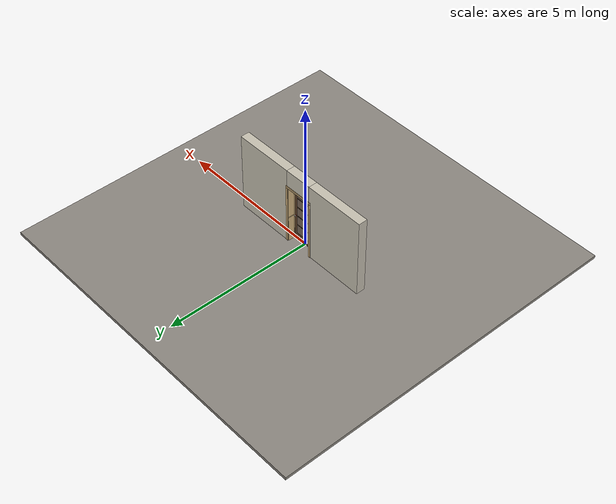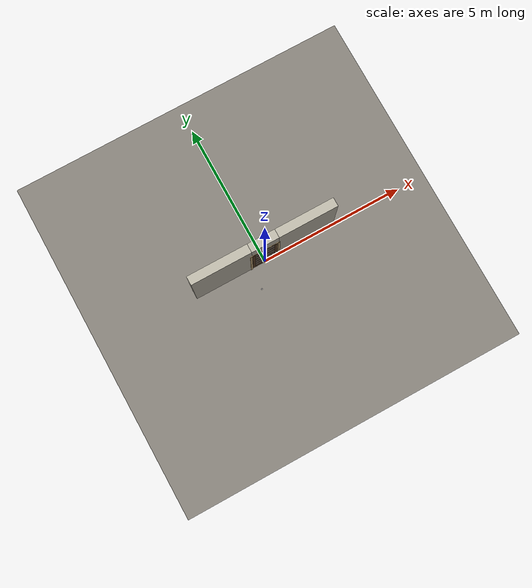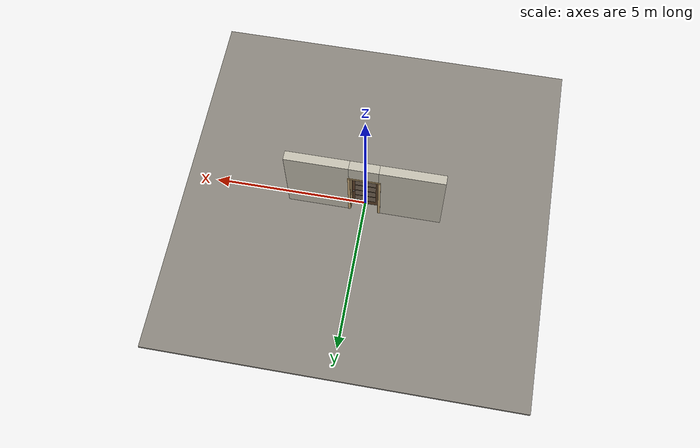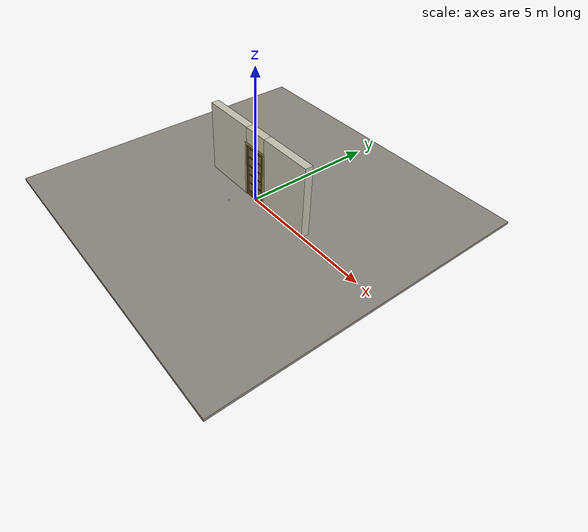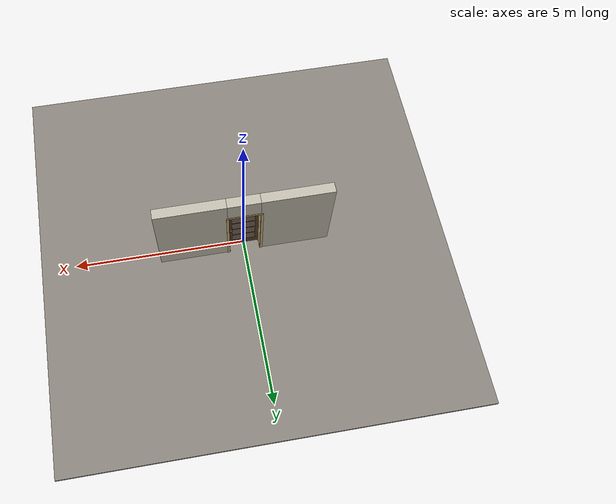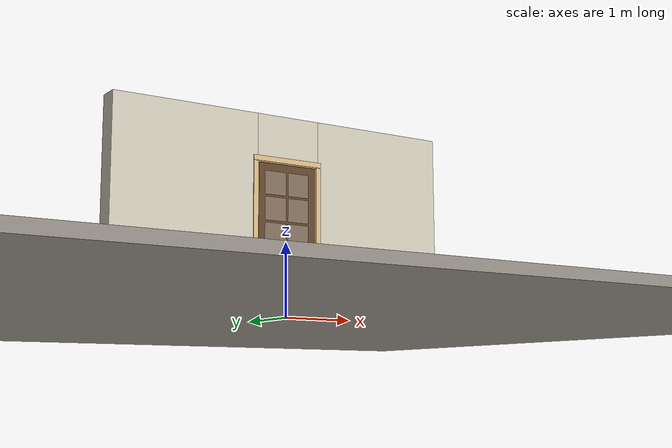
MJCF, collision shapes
<?xml version="1.0" ?>
<mujoco model="db0692_swing_single_full">
  <compiler angle="radian" meshdir="../../hardware" texturedir="../../textures" autolimits="true" inertiafromgeom="false"/>
  <option timestep="0.002" integrator="implicitfast" cone="elliptic" impratio="10" noslip_iterations="3">
    <flag multiccd="enable"/>
  </option>
  <size memory="16M"/>
  <default>
    <geom condim="4" solref="0.005 1" solimp="0.95 0.99 0.001"/>
    <joint solreflimit="0.005 1" solimplimit="0.95 0.99 0.001"/>
    <tendon solreflimit="0.005 1"/>
    <equality solref="0.002 1"/>
  </default>
  <visual>
    <headlight ambient="0.4 0.4 0.4" diffuse="0.7 0.7 0.7" specular="0.2 0.2 0.2"/>
    <quality shadowsize="4096"/>
    <map znear="0.01" zfar="60"/>
  </visual>
  <asset>
    <mesh name="hinge_e53abd72ad" file="hinge_e53abd72ad.obj"/>
    <mesh name="hinge_jamb_c17a76d68c" file="hinge_jamb_c17a76d68c.obj"/>
    <mesh name="knob_248d825e64" file="knob_248d825e64.obj"/>
    <mesh name="knob_d1888f6f03" file="knob_d1888f6f03.obj"/>
    <material name="mat_floor" rgba="0.55 0.53 0.5 1" specular="0.2" shininess="0.15" reflectance="0"/>
    <material name="mat_wall" rgba="0.78 0.76 0.7 1" specular="0.2" shininess="0.1" reflectance="0"/>
    <material name="mat_leaf" rgba="0.366 0.252 0.159 1" specular="0.2" shininess="0.5" reflectance="0"/>
    <material name="mat_glass" rgba="0.85 0.92 0.95 0.25" specular="0.2" shininess="0.95" reflectance="0.1"/>
    <material name="mat_hinge" rgba="0.65 0.66 0.68 1" specular="0.74" shininess="0.5" reflectance="0.36"/>
    <material name="mat_op_nickel_satin" rgba="0.72 0.7 0.66 1" specular="0.8" shininess="0.65" reflectance="0.4"/>
    <material name="mat_trim" rgba="0.85 0.66 0.3 1" specular="0.8" shininess="0.75" reflectance="0.4"/>
    <material name="mat_bolt" rgba="0.85 0.66 0.3 1" specular="0.8" shininess="0.75" reflectance="0.4"/>
    <material name="mat_frame" rgba="0.82 0.7 0.5 1" specular="0.2" shininess="0.45" reflectance="0"/>
    <material name="mat_stop" rgba="0.9 0.9 0.92 1" specular="0.8" shininess="0.9" reflectance="0.4"/>
    <texture name="skybox" type="skybox" builtin="gradient" rgb1="0.6 0.7 0.85" rgb2="0.9 0.92 0.95" width="256" height="256"/>
  </asset>
  <worldbody>
    <light name="sun" pos="1.5 -2.5 4" dir="-0.3 0.5 -0.8" directional="true" diffuse="0.8 0.8 0.8" specular="0.3 0.3 0.3" castshadow="true"/>
    <light name="fill" pos="-1.5 2.5 3" dir="0.3 -0.5 -0.7" directional="true" diffuse="0.35 0.35 0.4" castshadow="false"/>
    <camera name="robot_view" pos="0 -2.419187 1.734312" xyaxes="1 0 0 0 0.26963 0.962964" fovy="52"/>
    <camera name="far_view" pos="0 2.665188 1.734312" xyaxes="-1 0 0 0 -0.26963 0.962964" fovy="52"/>
    <camera name="iso" pos="1.932062 -2.012437 2.141063" xyaxes="0.741536 0.670913 0 -0.242917 0.268487 0.932151" fovy="46"/>
    <camera name="detail_handle" pos="0.5515 -0.8665 1.194" xyaxes="0.97561 0.219512 0 -0.070934 0.315262 0.94635" fovy="38"/>
    <geom name="floor" type="box" size="6 6 0.05" pos="0 0 -0.05" material="mat_floor" group="0" contype="1" conaffinity="1" friction="0.8 0.005 0.0001" density="2400"/>
    <geom name="wall_left" type="box" size="1.02275 0.15 1.35" pos="-1.47725 0.123 1.35" material="mat_wall" group="0" contype="1" conaffinity="1" friction="0.6 0.005 0.0001" density="800"/>
    <geom name="wall_right" type="box" size="1.00775 0.15 1.35" pos="1.49225 0.123 1.35" material="mat_wall" group="0" contype="1" conaffinity="1" friction="0.6 0.005 0.0001" density="800"/>
    <geom name="wall_header" type="box" size="0.4695 0.15 0.303" pos="0.015 0.123 2.397" material="mat_wall" group="0" contype="1" conaffinity="1" friction="0.6 0.005 0.0001" density="800"/>
    <geom name="hinge_0_jamb" type="mesh" mesh="hinge_jamb_c17a76d68c" pos="-0.4325 -0.027 0.259" material="mat_hinge" group="1" contype="0" conaffinity="0" density="7850"/>
    <geom name="hinge_1_jamb" type="mesh" mesh="hinge_jamb_c17a76d68c" pos="-0.4325 -0.027 1.025" material="mat_hinge" group="1" contype="0" conaffinity="0" density="7850"/>
    <geom name="hinge_2_jamb" type="mesh" mesh="hinge_jamb_c17a76d68c" pos="-0.4325 -0.027 1.861" material="mat_hinge" group="1" contype="0" conaffinity="0" density="7850"/>
    <geom name="jamb_hinge" type="box" size="0.0095 0.15 1.0225" pos="-0.445 0.123 1.0225" material="mat_frame" group="0" contype="1" conaffinity="1" friction="0.6 0.005 0.0001" density="400"/>
    <geom name="strike_914_wall_n" type="box" size="0.0245 0.132575 0.0167" pos="0.46 0.140425 0.914" material="mat_frame" group="0" contype="1" conaffinity="1" friction="0.6 0.005 0.0001" density="400"/>
    <geom name="strike_914_wall_p" type="box" size="0.0245 0.008 0.0167" pos="0.46 -0.01585 0.914" material="mat_frame" group="0" contype="1" conaffinity="1" friction="0.6 0.005 0.0001" density="400"/>
    <geom name="strike_914_ramp" type="box" size="0.0245 0.01649 0.0167" pos="0.464636 -0.028673 0.914" quat="0.977148 0 0 0.212558" material="mat_frame" group="0" contype="1" conaffinity="1" friction="0.12 0.005 0.0001" density="400"/>
    <geom name="strike_914_back" type="box" size="0.01615 0.00785 0.0167" pos="0.46835 0 0.914" material="mat_frame" group="0" contype="1" conaffinity="1" friction="0.6 0.005 0.0001" density="400"/>
    <geom name="jamb_strike_0" type="box" size="0.0245 0.15 0.44865" pos="0.46 0.123 0.44865" material="mat_frame" group="0" contype="1" conaffinity="1" friction="0.6 0.005 0.0001" density="400"/>
    <geom name="jamb_strike_1" type="box" size="0.0245 0.15 0.55715" pos="0.46 0.123 1.48785" material="mat_frame" group="0" contype="1" conaffinity="1" friction="0.6 0.005 0.0001" density="400"/>
    <geom name="jamb_head" type="box" size="0.4695 0.15 0.0095" pos="0.015 0.123 2.0545" material="mat_frame" group="0" contype="1" conaffinity="1" friction="0.6 0.005 0.0001" density="400"/>
    <geom name="head_stud" type="box" size="0.4695 0.15 0.015" pos="0.015 0.123 2.079" material="mat_wall" group="0" contype="1" conaffinity="1" friction="0.6 0.005 0.0001" density="500"/>
    <geom name="stop_hinge" type="box" size="0.0055 0.016 1.0225" pos="-0.43 0.0365 1.0225" material="mat_frame" group="0" contype="1" conaffinity="1" friction="0.6 0.005 0.0001" density="400"/>
    <geom name="stop_strike" type="box" size="0.0055 0.016 1.0225" pos="0.43 0.0365 1.0225" material="mat_frame" group="0" contype="1" conaffinity="1" friction="0.6 0.005 0.0001" density="400"/>
    <geom name="stop_head" type="box" size="0.4355 0.016 0.0055" pos="0 0.0365 2.0395" material="mat_frame" group="0" contype="1" conaffinity="1" friction="0.6 0.005 0.0001" density="400"/>
    <geom name="casing_l_n" type="box" size="0.035 0.008 1.032" pos="-0.4845 -0.035 1.0225" material="mat_frame" group="2" contype="0" conaffinity="0" density="400"/>
    <geom name="casing_r_n" type="box" size="0.035 0.008 1.032" pos="0.4845 -0.035 1.0225" material="mat_frame" group="2" contype="0" conaffinity="0" density="400"/>
    <geom name="casing_h_n" type="box" size="0.5195 0.008 0.035" pos="0 -0.035 2.094" material="mat_frame" group="2" contype="0" conaffinity="0" density="400"/>
    <geom name="casing_l_p" type="box" size="0.035 0.008 1.032" pos="-0.4845 0.281 1.0225" material="mat_frame" group="2" contype="0" conaffinity="0" density="400"/>
    <geom name="casing_r_p" type="box" size="0.035 0.008 1.032" pos="0.4845 0.281 1.0225" material="mat_frame" group="2" contype="0" conaffinity="0" density="400"/>
    <geom name="casing_h_p" type="box" size="0.5195 0.008 0.035" pos="0 0.281 2.094" material="mat_frame" group="2" contype="0" conaffinity="0" density="400"/>
    <geom name="floor_stop_dome" type="sphere" size="0.025" pos="-0.516431 -0.756862 0" material="mat_stop" group="0" contype="1" conaffinity="1" friction="0.6 0.005 0.0001" density="7000"/>
    <site name="approach_point" pos="0 -1.5 0" quat="1 0 0 0" size="0.05" rgba="0.2 0.9 0.2 0.5" group="4"/>
    <site name="goal_point" pos="0 1.5 0" quat="1 0 0 0" size="0.05" rgba="0.2 0.9 0.2 0.5" group="4"/>
    <site name="door_plane_center" pos="0 0 1.0225" quat="1 0 0 0" size="0.02" rgba="0.2 0.9 0.2 0.5" group="4"/>
    <body name="leaf" pos="-0.4355 0 0">
      <inertial pos="0.426243 -0.000316 1.025539" mass="36.021915" quat="-0.499698 0.500723 -0.499266 -0.500312" diaginertia="2.338341623 12.449372384 14.777674729"/>
      <joint name="leaf_hinge" type="hinge" axis="0 0 -1" pos="0.003 -0.027 0" limited="true" range="0 1.658063" damping="0.254501" frictionloss="0.746738" armature="0.02"/>
      <geom name="leaf_slab" type="box" size="0.432 0.02 1.016" pos="0.435 0 1.025" material="mat_leaf" group="0" contype="1" conaffinity="1" friction="0.4 0.005 0.0001" density="1"/>
      <geom name="leaf_glass_0" type="box" size="0.16098 0.0208 0.158688" pos="0.25902 0 0.391208" material="mat_glass" group="1" contype="0" conaffinity="0" density="1"/>
      <geom name="leaf_glass_1" type="box" size="0.16098 0.0208 0.158688" pos="0.61098 0 0.391208" material="mat_glass" group="1" contype="0" conaffinity="0" density="1"/>
      <geom name="leaf_glass_2" type="box" size="0.16098 0.0208 0.158688" pos="0.25902 0 0.738584" material="mat_glass" group="1" contype="0" conaffinity="0" density="1"/>
      <geom name="leaf_glass_3" type="box" size="0.16098 0.0208 0.158688" pos="0.61098 0 0.738584" material="mat_glass" group="1" contype="0" conaffinity="0" density="1"/>
      <geom name="leaf_glass_4" type="box" size="0.16098 0.0208 0.158688" pos="0.25902 0 1.08596" material="mat_glass" group="1" contype="0" conaffinity="0" density="1"/>
      <geom name="leaf_glass_5" type="box" size="0.16098 0.0208 0.158688" pos="0.61098 0 1.08596" material="mat_glass" group="1" contype="0" conaffinity="0" density="1"/>
      <geom name="leaf_glass_6" type="box" size="0.16098 0.0208 0.158688" pos="0.25902 0 1.433336" material="mat_glass" group="1" contype="0" conaffinity="0" density="1"/>
      <geom name="leaf_glass_7" type="box" size="0.16098 0.0208 0.158688" pos="0.61098 0 1.433336" material="mat_glass" group="1" contype="0" conaffinity="0" density="1"/>
      <geom name="leaf_glass_8" type="box" size="0.16098 0.0208 0.158688" pos="0.25902 0 1.780712" material="mat_glass" group="1" contype="0" conaffinity="0" density="1"/>
      <geom name="leaf_glass_9" type="box" size="0.16098 0.0208 0.158688" pos="0.61098 0 1.780712" material="mat_glass" group="1" contype="0" conaffinity="0" density="1"/>
      <geom name="hinge_0" type="mesh" mesh="hinge_e53abd72ad" pos="0.003 -0.027 0.259" material="mat_hinge" group="1" contype="0" conaffinity="0" density="7850"/>
      <geom name="hinge_1" type="mesh" mesh="hinge_e53abd72ad" pos="0.003 -0.027 1.025" material="mat_hinge" group="1" contype="0" conaffinity="0" density="7850"/>
      <geom name="hinge_2" type="mesh" mesh="hinge_e53abd72ad" pos="0.003 -0.027 1.861" material="mat_hinge" group="1" contype="0" conaffinity="0" density="7850"/>
      <geom name="leaf_latch_bolt_faceplate" type="box" size="0.0006 0.01235 0.0267" pos="0.8664 0 0.914" material="mat_bolt" group="1" contype="0" conaffinity="0" density="8500"/>
      <site name="leaf_edge_mid" pos="0.867 0 1.016" quat="1 0 0 0" size="0.02" rgba="0.2 0.9 0.2 0.5" group="4"/>
      <body name="leaf_handle" pos="0.807 0 0.914">
        <inertial pos="0 0.000221 0" mass="1.1511" quat="0.5 0.5 0.5 0.5" diaginertia="0.000312482 0.004034625 0.004034625"/>
        <joint name="leaf_handle_hinge" type="hinge" axis="0 -1 0" limited="true" range="0 0.87" damping="0.143614" frictionloss="0.038" stiffness="0.5" springref="-0.5" armature="0.01"/>
        <geom name="leaf_handle_spindle" type="cylinder" size="0.006 0.028" pos="0 0 0" quat="0.707107 -0.707107 0 0" material="mat_op_nickel_satin" group="1" contype="0" conaffinity="0" density="7850"/>
        <geom name="leaf_handle_knob_n" type="mesh" mesh="knob_d1888f6f03" pos="0 -0.02 0" quat="0.707107 0.707107 0 0" material="mat_op_nickel_satin" group="1" contype="0" conaffinity="0" density="3000"/>
        <geom name="leaf_handle_knob_col_n" type="sphere" size="0.0243" pos="0 -0.0665 0" material="mat_op_nickel_satin" group="0" contype="1" conaffinity="1" friction="0.9 0.01 0.0001" density="3000"/>
        <geom name="leaf_handle_knob_neck_n" type="cylinder" size="0.011 0.012" pos="0 -0.032 0" quat="0.707107 -0.707107 0 0" material="mat_op_nickel_satin" group="3" contype="1" conaffinity="1" rgba="0.8 0.3 0.3 0.25" friction="0.6 0.005 0.0001" density="3000"/>
        <geom name="leaf_handle_knob_p" type="mesh" mesh="knob_248d825e64" pos="0 0.02 0" quat="-0.707107 0.707107 0 0" material="mat_op_nickel_satin" group="1" contype="0" conaffinity="0" density="3000"/>
        <geom name="leaf_handle_knob_col_p" type="sphere" size="0.0243" pos="0 0.0665 0" material="mat_op_nickel_satin" group="0" contype="1" conaffinity="1" friction="0.9 0.01 0.0001" density="3000"/>
        <geom name="leaf_handle_knob_neck_p" type="cylinder" size="0.011 0.012" pos="0 0.032 0" quat="0.707107 -0.707107 0 0" material="mat_op_nickel_satin" group="3" contype="1" conaffinity="1" rgba="0.8 0.3 0.3 0.25" friction="0.6 0.005 0.0001" density="3000"/>
        <site name="leaf_handle_grip_n" pos="0 -0.0665 0" quat="1 0 0 0" size="0.012" rgba="0.2 0.9 0.2 0.5" group="4"/>
        <site name="leaf_handle_grip_p" pos="0 0.0665 0" quat="1 0 0 0" size="0.012" rgba="0.2 0.9 0.2 0.5" group="4"/>
      </body>
      <body name="leaf_latch_bolt" pos="0.867 0 0.914">
        <inertial pos="-0.00865 0 0" mass="0.041419" quat="0.92388 -0.382683 0 0" diaginertia="0.000000798 0.000005598 0.000005598"/>
        <joint name="leaf_latch_bolt_slide" type="slide" axis="-1 0 0" limited="true" range="0 0.0127" damping="2" frictionloss="0.3" stiffness="300" springref="-0.008333" armature="0.1"/>
        <geom name="leaf_latch_bolt_capsule" type="capsule" size="0.00635 0.015" pos="-0.00865 0 0" quat="0.707107 0 0.707107 0" material="mat_bolt" group="0" contype="1" conaffinity="1" friction="0.2 0.005 0.0001" density="8500"/>
      </body>
    </body>
  </worldbody>
  <tendon>
    <fixed name="leaf_latch_bolt_coupling" limited="true" range="0 10">
      <joint joint="leaf_latch_bolt_slide" coef="1"/>
      <joint joint="leaf_handle_hinge" coef="-0.015679"/>
    </fixed>
  </tendon>
  <sensor>
    <jointpos name="leaf_hinge_pos" joint="leaf_hinge"/>
    <jointvel name="leaf_hinge_vel" joint="leaf_hinge"/>
    <jointpos name="leaf_handle_hinge_pos" joint="leaf_handle_hinge"/>
    <jointvel name="leaf_handle_hinge_vel" joint="leaf_handle_hinge"/>
    <jointpos name="leaf_latch_bolt_slide_pos" joint="leaf_latch_bolt_slide"/>
    <jointvel name="leaf_latch_bolt_slide_vel" joint="leaf_latch_bolt_slide"/>
  </sensor>
</mujoco>
